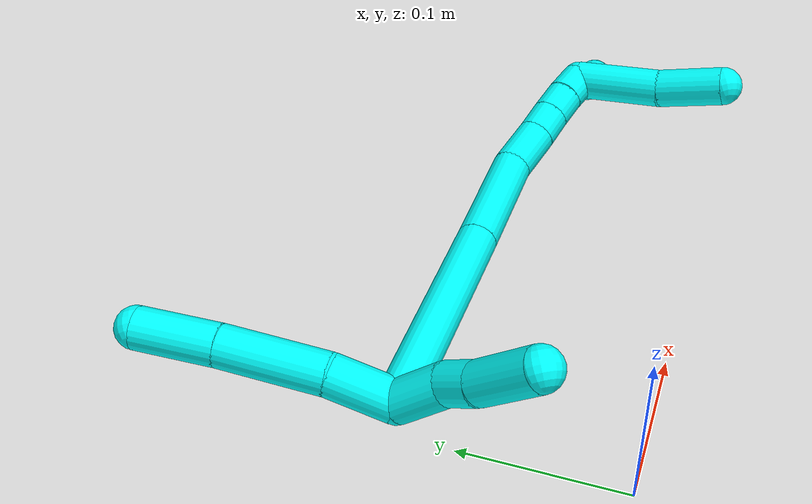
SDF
<sdf version="1.7">
 <world name="default">
  <model name="3">
   <static>0</static>
   <link name="3">
    <collision name="collision-cylinder-e_1_2_8">
     <pose>-0.007498 0.014802 0.010472 -0.955079 -0.392092 0.204823</pose>
     <geometry><cylinder><radius>0.0125</radius><length>0.039242</length></cylinder></geometry>
     <surface>
      <friction><ode><mu>1.16</mu><mu2>1.16</mu2><slip1>0</slip1><slip2>0</slip2></ode></friction>
      <contact><ode><kp>1e+06</kp><kd>1</kd><max_vel>0</max_vel><min_depth>0.001</min_depth></ode></contact>
     </surface>
    </collision>
    <visual name="visual-cylinder-e_1_2_8">
     <pose>-0.007498 0.014802 0.010472 -0.955079 -0.392092 0.204823</pose>
     <geometry><cylinder><radius>0.0125</radius><length>0.039242</length></cylinder></geometry>
     <material><ambient>0.003922 1 0.996078 1</ambient></material>
    </visual>
    <collision name="collision-cylinder-e_2_8_9">
     <pose>-0.024209 0.056151 0.034856 -1.08808 -0.298253 0.181276</pose>
     <geometry><cylinder><radius>0.0125</radius><length>0.06271</length></cylinder></geometry>
     <surface>
      <friction><ode><mu>1.16</mu><mu2>1.16</mu2><slip1>0</slip1><slip2>0</slip2></ode></friction>
      <contact><ode><kp>1e+06</kp><kd>1</kd><max_vel>0</max_vel><min_depth>0.001</min_depth></ode></contact>
     </surface>
    </collision>
    <visual name="visual-cylinder-e_2_8_9">
     <pose>-0.024209 0.056151 0.034856 -1.08808 -0.298253 0.181276</pose>
     <geometry><cylinder><radius>0.0125</radius><length>0.06271</length></cylinder></geometry>
     <material><ambient>0.003922 1 0.996078 1</ambient></material>
    </visual>
    <collision name="collision-cylinder-e_3_9_6">
     <pose>-0.040124 0.103615 0.058498 -1.13542 -0.282682 0.180993</pose>
     <geometry><cylinder><radius>0.0125</radius><length>0.048048</length></cylinder></geometry>
     <surface>
      <friction><ode><mu>1.16</mu><mu2>1.16</mu2><slip1>0</slip1><slip2>0</slip2></ode></friction>
      <contact><ode><kp>1e+06</kp><kd>1</kd><max_vel>0</max_vel><min_depth>0.001</min_depth></ode></contact>
     </surface>
    </collision>
    <visual name="visual-cylinder-e_3_9_6">
     <pose>-0.040124 0.103615 0.058498 -1.13542 -0.282682 0.180993</pose>
     <geometry><cylinder><radius>0.0125</radius><length>0.048048</length></cylinder></geometry>
     <material><ambient>0.003922 1 0.996078 1</ambient></material>
    </visual>
    <collision name="collision-cylinder-e_1_2_10">
     <pose>-0.004149 -0.016687 0.000422 1.54553 -0.243627 -0.237605</pose>
     <geometry><cylinder><radius>0.0125</radius><length>0.0344</length></cylinder></geometry>
     <surface>
      <friction><ode><mu>1.16</mu><mu2>1.16</mu2><slip1>0</slip1><slip2>0</slip2></ode></friction>
      <contact><ode><kp>1e+06</kp><kd>1</kd><max_vel>0</max_vel><min_depth>0.001</min_depth></ode></contact>
     </surface>
    </collision>
    <visual name="visual-cylinder-e_1_2_10">
     <pose>-0.004149 -0.016687 0.000422 1.54553 -0.243627 -0.237605</pose>
     <geometry><cylinder><radius>0.0125</radius><length>0.0344</length></cylinder></geometry>
     <material><ambient>0.003922 1 0.996078 1</ambient></material>
    </visual>
    <collision name="collision-cylinder-e_2_10_11">
     <pose>-0.012745 -0.043383 -0.001999 1.84749 -0.403852 -0.529183</pose>
     <geometry><cylinder><radius>0.0125</radius><length>0.022632</length></cylinder></geometry>
     <surface>
      <friction><ode><mu>1.16</mu><mu2>1.16</mu2><slip1>0</slip1><slip2>0</slip2></ode></friction>
      <contact><ode><kp>1e+06</kp><kd>1</kd><max_vel>0</max_vel><min_depth>0.001</min_depth></ode></contact>
     </surface>
    </collision>
    <visual name="visual-cylinder-e_2_10_11">
     <pose>-0.012745 -0.043383 -0.001999 1.84749 -0.403852 -0.529183</pose>
     <geometry><cylinder><radius>0.0125</radius><length>0.022632</length></cylinder></geometry>
     <material><ambient>0.003922 1 0.996078 1</ambient></material>
    </visual>
    <collision name="collision-cylinder-e_3_11_5">
     <pose>-0.026031 -0.07286 -0.00696 1.67917 -0.424022 -0.470968</pose>
     <geometry><cylinder><radius>0.0125</radius><length>0.042968</length></cylinder></geometry>
     <surface>
      <friction><ode><mu>1.16</mu><mu2>1.16</mu2><slip1>0</slip1><slip2>0</slip2></ode></friction>
      <contact><ode><kp>1e+06</kp><kd>1</kd><max_vel>0</max_vel><min_depth>0.001</min_depth></ode></contact>
     </surface>
    </collision>
    <visual name="visual-cylinder-e_3_11_5">
     <pose>-0.026031 -0.07286 -0.00696 1.67917 -0.424022 -0.470968</pose>
     <geometry><cylinder><radius>0.0125</radius><length>0.042968</length></cylinder></geometry>
     <material><ambient>0.003922 1 0.996078 1</ambient></material>
    </visual>
    <collision name="collision-cylinder-e_1_2_12">
     <pose>0.041645 -0.017547 0.049769 0.338957 0.668096 0.118636</pose>
     <geometry><cylinder><radius>0.0125</radius><length>0.134449</length></cylinder></geometry>
     <surface>
      <friction><ode><mu>1.16</mu><mu2>1.16</mu2><slip1>0</slip1><slip2>0</slip2></ode></friction>
      <contact><ode><kp>1e+06</kp><kd>1</kd><max_vel>0</max_vel><min_depth>0.001</min_depth></ode></contact>
     </surface>
    </collision>
    <visual name="visual-cylinder-e_1_2_12">
     <pose>0.041645 -0.017547 0.049769 0.338957 0.668096 0.118636</pose>
     <geometry><cylinder><radius>0.0125</radius><length>0.134449</length></cylinder></geometry>
     <material><ambient>0.003922 1 0.996078 1</ambient></material>
    </visual>
    <collision name="collision-cylinder-e_2_12_13">
     <pose>0.105369 -0.044791 0.126976 0.339729 0.649023 0.11527</pose>
     <geometry><cylinder><radius>0.0125</radius><length>0.073058</length></cylinder></geometry>
     <surface>
      <friction><ode><mu>1.16</mu><mu2>1.16</mu2><slip1>0</slip1><slip2>0</slip2></ode></friction>
      <contact><ode><kp>1e+06</kp><kd>1</kd><max_vel>0</max_vel><min_depth>0.001</min_depth></ode></contact>
     </surface>
    </collision>
    <visual name="visual-cylinder-e_2_12_13">
     <pose>0.105369 -0.044791 0.126976 0.339729 0.649023 0.11527</pose>
     <geometry><cylinder><radius>0.0125</radius><length>0.073058</length></cylinder></geometry>
     <material><ambient>0.003922 1 0.996078 1</ambient></material>
    </visual>
    <collision name="collision-cylinder-e_3_13_14">
     <pose>0.135776 -0.062757 0.165464 0.642456 0.543008 0.184735</pose>
     <geometry><cylinder><radius>0.0125</radius><length>0.032239</length></cylinder></geometry>
     <surface>
      <friction><ode><mu>1.16</mu><mu2>1.16</mu2><slip1>0</slip1><slip2>0</slip2></ode></friction>
      <contact><ode><kp>1e+06</kp><kd>1</kd><max_vel>0</max_vel><min_depth>0.001</min_depth></ode></contact>
     </surface>
    </collision>
    <visual name="visual-cylinder-e_3_13_14">
     <pose>0.135776 -0.062757 0.165464 0.642456 0.543008 0.184735</pose>
     <geometry><cylinder><radius>0.0125</radius><length>0.032239</length></cylinder></geometry>
     <material><ambient>0.003922 1 0.996078 1</ambient></material>
    </visual>
    <collision name="collision-cylinder-e_4_14_15">
     <pose>0.148968 -0.076178 0.183734 0.619687 0.501519 0.16365</pose>
     <geometry><cylinder><radius>0.0125</radius><length>0.020232</length></cylinder></geometry>
     <surface>
      <friction><ode><mu>1.16</mu><mu2>1.16</mu2><slip1>0</slip1><slip2>0</slip2></ode></friction>
      <contact><ode><kp>1e+06</kp><kd>1</kd><max_vel>0</max_vel><min_depth>0.001</min_depth></ode></contact>
     </surface>
    </collision>
    <visual name="visual-cylinder-e_4_14_15">
     <pose>0.148968 -0.076178 0.183734 0.619687 0.501519 0.16365</pose>
     <geometry><cylinder><radius>0.0125</radius><length>0.020232</length></cylinder></geometry>
     <material><ambient>0.003922 1 0.996078 1</ambient></material>
    </visual>
    <collision name="collision-cylinder-e_5_15_16">
     <pose>0.158611 -0.086716 0.197899 0.659754 0.4981 0.173721</pose>
     <geometry><cylinder><radius>0.0125</radius><length>0.020008</length></cylinder></geometry>
     <surface>
      <friction><ode><mu>1.16</mu><mu2>1.16</mu2><slip1>0</slip1><slip2>0</slip2></ode></friction>
      <contact><ode><kp>1e+06</kp><kd>1</kd><max_vel>0</max_vel><min_depth>0.001</min_depth></ode></contact>
     </surface>
    </collision>
    <visual name="visual-cylinder-e_5_15_16">
     <pose>0.158611 -0.086716 0.197899 0.659754 0.4981 0.173721</pose>
     <geometry><cylinder><radius>0.0125</radius><length>0.020008</length></cylinder></geometry>
     <material><ambient>0.003922 1 0.996078 1</ambient></material>
    </visual>
    <collision name="collision-cylinder-e_6_16_1">
     <pose>0.168656 -0.097616 0.211326 0.704755 0.554025 0.208348</pose>
     <geometry><cylinder><radius>0.0125</radius><length>0.020014</length></cylinder></geometry>
     <surface>
      <friction><ode><mu>1.16</mu><mu2>1.16</mu2><slip1>0</slip1><slip2>0</slip2></ode></friction>
      <contact><ode><kp>1e+06</kp><kd>1</kd><max_vel>0</max_vel><min_depth>0.001</min_depth></ode></contact>
     </surface>
    </collision>
    <visual name="visual-cylinder-e_6_16_1">
     <pose>0.168656 -0.097616 0.211326 0.704755 0.554025 0.208348</pose>
     <geometry><cylinder><radius>0.0125</radius><length>0.020014</length></cylinder></geometry>
     <material><ambient>0.003922 1 0.996078 1</ambient></material>
    </visual>
    <collision name="collision-cylinder-e_1_1_17">
     <pose>0.198583 -0.100728 0.226278 -0.276293 1.22794 -0.195369</pose>
     <geometry><cylinder><radius>0.0125</radius><length>0.052373</length></cylinder></geometry>
     <surface>
      <friction><ode><mu>1.16</mu><mu2>1.16</mu2><slip1>0</slip1><slip2>0</slip2></ode></friction>
      <contact><ode><kp>1e+06</kp><kd>1</kd><max_vel>0</max_vel><min_depth>0.001</min_depth></ode></contact>
     </surface>
    </collision>
    <visual name="visual-cylinder-e_1_1_17">
     <pose>0.198583 -0.100728 0.226278 -0.276293 1.22794 -0.195369</pose>
     <geometry><cylinder><radius>0.0125</radius><length>0.052373</length></cylinder></geometry>
     <material><ambient>0.003922 1 0.996078 1</ambient></material>
    </visual>
    <collision name="collision-cylinder-e_2_17_18">
     <pose>0.233985 -0.097476 0.239627 -0.172701 1.13869 -0.110699</pose>
     <geometry><cylinder><radius>0.0125</radius><length>0.023653</length></cylinder></geometry>
     <surface>
      <friction><ode><mu>1.16</mu><mu2>1.16</mu2><slip1>0</slip1><slip2>0</slip2></ode></friction>
      <contact><ode><kp>1e+06</kp><kd>1</kd><max_vel>0</max_vel><min_depth>0.001</min_depth></ode></contact>
     </surface>
    </collision>
    <visual name="visual-cylinder-e_2_17_18">
     <pose>0.233985 -0.097476 0.239627 -0.172701 1.13869 -0.110699</pose>
     <geometry><cylinder><radius>0.0125</radius><length>0.023653</length></cylinder></geometry>
     <material><ambient>0.003922 1 0.996078 1</ambient></material>
    </visual>
    <collision name="collision-cylinder-e_3_18_4">
     <pose>0.255078 -0.097067 0.250531 0.073321 1.0426 0.04212</pose>
     <geometry><cylinder><radius>0.0125</radius><length>0.023973</length></cylinder></geometry>
     <surface>
      <friction><ode><mu>1.16</mu><mu2>1.16</mu2><slip1>0</slip1><slip2>0</slip2></ode></friction>
      <contact><ode><kp>1e+06</kp><kd>1</kd><max_vel>0</max_vel><min_depth>0.001</min_depth></ode></contact>
     </surface>
    </collision>
    <visual name="visual-cylinder-e_3_18_4">
     <pose>0.255078 -0.097067 0.250531 0.073321 1.0426 0.04212</pose>
     <geometry><cylinder><radius>0.0125</radius><length>0.023973</length></cylinder></geometry>
     <material><ambient>0.003922 1 0.996078 1</ambient></material>
    </visual>
    <collision name="collision-cylinder-e_1_1_19">
     <pose>0.175533 -0.128826 0.205735 2.01005 0.056727 0.089297</pose>
     <geometry><cylinder><radius>0.0125</radius><length>0.056875</length></cylinder></geometry>
     <surface>
      <friction><ode><mu>1.16</mu><mu2>1.16</mu2><slip1>0</slip1><slip2>0</slip2></ode></friction>
      <contact><ode><kp>1e+06</kp><kd>1</kd><max_vel>0</max_vel><min_depth>0.001</min_depth></ode></contact>
     </surface>
    </collision>
    <visual name="visual-cylinder-e_1_1_19">
     <pose>0.175533 -0.128826 0.205735 2.01005 0.056727 0.089297</pose>
     <geometry><cylinder><radius>0.0125</radius><length>0.056875</length></cylinder></geometry>
     <material><ambient>0.003922 1 0.996078 1</ambient></material>
    </visual>
    <collision name="collision-cylinder-e_2_19_3">
     <pose>0.176724 -0.175026 0.186999 1.88494 -0.019525 -0.026873</pose>
     <geometry><cylinder><radius>0.0125</radius><length>0.043125</length></cylinder></geometry>
     <surface>
      <friction><ode><mu>1.16</mu><mu2>1.16</mu2><slip1>0</slip1><slip2>0</slip2></ode></friction>
      <contact><ode><kp>1e+06</kp><kd>1</kd><max_vel>0</max_vel><min_depth>0.001</min_depth></ode></contact>
     </surface>
    </collision>
    <visual name="visual-cylinder-e_2_19_3">
     <pose>0.176724 -0.175026 0.186999 1.88494 -0.019525 -0.026873</pose>
     <geometry><cylinder><radius>0.0125</radius><length>0.043125</length></cylinder></geometry>
     <material><ambient>0.003922 1 0.996078 1</ambient></material>
    </visual>
    <collision name="collision-sphere-3">
     <pose>0.176303 -0.195529 0.180337 0 -0 0</pose>
     <geometry><sphere><radius>0.0125</radius></sphere></geometry>
     <surface>
      <friction><ode><mu>1.16</mu><mu2>1.16</mu2><slip1>0</slip1><slip2>0</slip2></ode></friction>
      <contact><ode><kp>1e+06</kp><kd>1</kd><max_vel>0</max_vel><min_depth>0.001</min_depth></ode></contact>
     </surface>
    </collision>
    <visual name="visual-sphere-3">
     <pose>0.176303 -0.195529 0.180337 0 -0 0</pose>
     <geometry><sphere><radius>0.0125</radius></sphere></geometry>
     <material><ambient>0.003922 1 0.996078 1</ambient></material>
    </visual>
    <collision name="collision-sphere-19">
     <pose>0.177145 -0.154523 0.19366 0 -0 0</pose>
     <geometry><sphere><radius>0.0125</radius></sphere></geometry>
     <surface>
      <friction><ode><mu>1.16</mu><mu2>1.16</mu2><slip1>0</slip1><slip2>0</slip2></ode></friction>
      <contact><ode><kp>1e+06</kp><kd>1</kd><max_vel>0</max_vel><min_depth>0.001</min_depth></ode></contact>
     </surface>
    </collision>
    <visual name="visual-sphere-19">
     <pose>0.177145 -0.154523 0.19366 0 -0 0</pose>
     <geometry><sphere><radius>0.0125</radius></sphere></geometry>
     <material><ambient>0.003922 1 0.996078 1</ambient></material>
    </visual>
    <collision name="collision-sphere-11">
     <pose>-0.017192 -0.053393 -0.004842 0 -0 0</pose>
     <geometry><sphere><radius>0.0125</radius></sphere></geometry>
     <surface>
      <friction><ode><mu>1.16</mu><mu2>1.16</mu2><slip1>0</slip1><slip2>0</slip2></ode></friction>
      <contact><ode><kp>1e+06</kp><kd>1</kd><max_vel>0</max_vel><min_depth>0.001</min_depth></ode></contact>
     </surface>
    </collision>
    <visual name="visual-sphere-11">
     <pose>-0.017192 -0.053393 -0.004842 0 -0 0</pose>
     <geometry><sphere><radius>0.0125</radius></sphere></geometry>
     <material><ambient>0.003922 1 0.996078 1</ambient></material>
    </visual>
    <collision name="collision-sphere-10">
     <pose>-0.008298 -0.033374 0.000843 0 -0 0</pose>
     <geometry><sphere><radius>0.0125</radius></sphere></geometry>
     <surface>
      <friction><ode><mu>1.16</mu><mu2>1.16</mu2><slip1>0</slip1><slip2>0</slip2></ode></friction>
      <contact><ode><kp>1e+06</kp><kd>1</kd><max_vel>0</max_vel><min_depth>0.001</min_depth></ode></contact>
     </surface>
    </collision>
    <visual name="visual-sphere-10">
     <pose>-0.008298 -0.033374 0.000843 0 -0 0</pose>
     <geometry><sphere><radius>0.0125</radius></sphere></geometry>
     <material><ambient>0.003922 1 0.996078 1</ambient></material>
    </visual>
    <collision name="collision-sphere-6">
     <pose>-0.046825 0.124534 0.068228 0 -0 0</pose>
     <geometry><sphere><radius>0.0125</radius></sphere></geometry>
     <surface>
      <friction><ode><mu>1.16</mu><mu2>1.16</mu2><slip1>0</slip1><slip2>0</slip2></ode></friction>
      <contact><ode><kp>1e+06</kp><kd>1</kd><max_vel>0</max_vel><min_depth>0.001</min_depth></ode></contact>
     </surface>
    </collision>
    <visual name="visual-sphere-6">
     <pose>-0.046825 0.124534 0.068228 0 -0 0</pose>
     <geometry><sphere><radius>0.0125</radius></sphere></geometry>
     <material><ambient>0.003922 1 0.996078 1</ambient></material>
    </visual>
    <collision name="collision-sphere-9">
     <pose>-0.033423 0.082697 0.048768 0 -0 0</pose>
     <geometry><sphere><radius>0.0125</radius></sphere></geometry>
     <surface>
      <friction><ode><mu>1.16</mu><mu2>1.16</mu2><slip1>0</slip1><slip2>0</slip2></ode></friction>
      <contact><ode><kp>1e+06</kp><kd>1</kd><max_vel>0</max_vel><min_depth>0.001</min_depth></ode></contact>
     </surface>
    </collision>
    <visual name="visual-sphere-9">
     <pose>-0.033423 0.082697 0.048768 0 -0 0</pose>
     <geometry><sphere><radius>0.0125</radius></sphere></geometry>
     <material><ambient>0.003922 1 0.996078 1</ambient></material>
    </visual>
    <collision name="collision-sphere-2">
     <geometry><sphere><radius>0.0125</radius></sphere></geometry>
     <surface>
      <friction><ode><mu>1.16</mu><mu2>1.16</mu2><slip1>0</slip1><slip2>0</slip2></ode></friction>
      <contact><ode><kp>1e+06</kp><kd>1</kd><max_vel>0</max_vel><min_depth>0.001</min_depth></ode></contact>
     </surface>
    </collision>
    <visual name="visual-sphere-2">
     <geometry><sphere><radius>0.0125</radius></sphere></geometry>
     <material><ambient>0.003922 1 0.996078 1</ambient></material>
    </visual>
    <collision name="collision-sphere-8">
     <pose>-0.014995 0.029604 0.020944 0 -0 0</pose>
     <geometry><sphere><radius>0.0125</radius></sphere></geometry>
     <surface>
      <friction><ode><mu>1.16</mu><mu2>1.16</mu2><slip1>0</slip1><slip2>0</slip2></ode></friction>
      <contact><ode><kp>1e+06</kp><kd>1</kd><max_vel>0</max_vel><min_depth>0.001</min_depth></ode></contact>
     </surface>
    </collision>
    <visual name="visual-sphere-8">
     <pose>-0.014995 0.029604 0.020944 0 -0 0</pose>
     <geometry><sphere><radius>0.0125</radius></sphere></geometry>
     <material><ambient>0.003922 1 0.996078 1</ambient></material>
    </visual>
    <collision name="collision-sphere-5">
     <pose>-0.03487 -0.092326 -0.009078 0 -0 0</pose>
     <geometry><sphere><radius>0.0125</radius></sphere></geometry>
     <surface>
      <friction><ode><mu>1.16</mu><mu2>1.16</mu2><slip1>0</slip1><slip2>0</slip2></ode></friction>
      <contact><ode><kp>1e+06</kp><kd>1</kd><max_vel>0</max_vel><min_depth>0.001</min_depth></ode></contact>
     </surface>
    </collision>
    <visual name="visual-sphere-5">
     <pose>-0.03487 -0.092326 -0.009078 0 -0 0</pose>
     <geometry><sphere><radius>0.0125</radius></sphere></geometry>
     <material><ambient>0.003922 1 0.996078 1</ambient></material>
    </visual>
    <collision name="collision-sphere-12">
     <pose>0.08329 -0.035093 0.099538 0 -0 0</pose>
     <geometry><sphere><radius>0.0125</radius></sphere></geometry>
     <surface>
      <friction><ode><mu>1.16</mu><mu2>1.16</mu2><slip1>0</slip1><slip2>0</slip2></ode></friction>
      <contact><ode><kp>1e+06</kp><kd>1</kd><max_vel>0</max_vel><min_depth>0.001</min_depth></ode></contact>
     </surface>
    </collision>
    <visual name="visual-sphere-12">
     <pose>0.08329 -0.035093 0.099538 0 -0 0</pose>
     <geometry><sphere><radius>0.0125</radius></sphere></geometry>
     <material><ambient>0.003922 1 0.996078 1</ambient></material>
    </visual>
    <collision name="collision-sphere-13">
     <pose>0.127447 -0.054489 0.154414 0 -0 0</pose>
     <geometry><sphere><radius>0.0125</radius></sphere></geometry>
     <surface>
      <friction><ode><mu>1.16</mu><mu2>1.16</mu2><slip1>0</slip1><slip2>0</slip2></ode></friction>
      <contact><ode><kp>1e+06</kp><kd>1</kd><max_vel>0</max_vel><min_depth>0.001</min_depth></ode></contact>
     </surface>
    </collision>
    <visual name="visual-sphere-13">
     <pose>0.127447 -0.054489 0.154414 0 -0 0</pose>
     <geometry><sphere><radius>0.0125</radius></sphere></geometry>
     <material><ambient>0.003922 1 0.996078 1</ambient></material>
    </visual>
    <collision name="collision-sphere-14">
     <pose>0.144105 -0.071026 0.176513 0 -0 0</pose>
     <geometry><sphere><radius>0.0125</radius></sphere></geometry>
     <surface>
      <friction><ode><mu>1.16</mu><mu2>1.16</mu2><slip1>0</slip1><slip2>0</slip2></ode></friction>
      <contact><ode><kp>1e+06</kp><kd>1</kd><max_vel>0</max_vel><min_depth>0.001</min_depth></ode></contact>
     </surface>
    </collision>
    <visual name="visual-sphere-14">
     <pose>0.144105 -0.071026 0.176513 0 -0 0</pose>
     <geometry><sphere><radius>0.0125</radius></sphere></geometry>
     <material><ambient>0.003922 1 0.996078 1</ambient></material>
    </visual>
    <collision name="collision-sphere-15">
     <pose>0.153832 -0.08133 0.190955 0 -0 0</pose>
     <geometry><sphere><radius>0.0125</radius></sphere></geometry>
     <surface>
      <friction><ode><mu>1.16</mu><mu2>1.16</mu2><slip1>0</slip1><slip2>0</slip2></ode></friction>
      <contact><ode><kp>1e+06</kp><kd>1</kd><max_vel>0</max_vel><min_depth>0.001</min_depth></ode></contact>
     </surface>
    </collision>
    <visual name="visual-sphere-15">
     <pose>0.153832 -0.08133 0.190955 0 -0 0</pose>
     <geometry><sphere><radius>0.0125</radius></sphere></geometry>
     <material><ambient>0.003922 1 0.996078 1</ambient></material>
    </visual>
    <collision name="collision-sphere-16">
     <pose>0.163391 -0.092103 0.204843 0 -0 0</pose>
     <geometry><sphere><radius>0.0125</radius></sphere></geometry>
     <surface>
      <friction><ode><mu>1.16</mu><mu2>1.16</mu2><slip1>0</slip1><slip2>0</slip2></ode></friction>
      <contact><ode><kp>1e+06</kp><kd>1</kd><max_vel>0</max_vel><min_depth>0.001</min_depth></ode></contact>
     </surface>
    </collision>
    <visual name="visual-sphere-16">
     <pose>0.163391 -0.092103 0.204843 0 -0 0</pose>
     <geometry><sphere><radius>0.0125</radius></sphere></geometry>
     <material><ambient>0.003922 1 0.996078 1</ambient></material>
    </visual>
    <collision name="collision-sphere-1">
     <pose>0.173921 -0.10313 0.217809 0 -0 0</pose>
     <geometry><sphere><radius>0.0125</radius></sphere></geometry>
     <surface>
      <friction><ode><mu>1.16</mu><mu2>1.16</mu2><slip1>0</slip1><slip2>0</slip2></ode></friction>
      <contact><ode><kp>1e+06</kp><kd>1</kd><max_vel>0</max_vel><min_depth>0.001</min_depth></ode></contact>
     </surface>
    </collision>
    <visual name="visual-sphere-1">
     <pose>0.173921 -0.10313 0.217809 0 -0 0</pose>
     <geometry><sphere><radius>0.0125</radius></sphere></geometry>
     <material><ambient>0.003922 1 0.996078 1</ambient></material>
    </visual>
    <collision name="collision-sphere-18">
     <pose>0.244725 -0.096624 0.244506 0 -0 0</pose>
     <geometry><sphere><radius>0.0125</radius></sphere></geometry>
     <surface>
      <friction><ode><mu>1.16</mu><mu2>1.16</mu2><slip1>0</slip1><slip2>0</slip2></ode></friction>
      <contact><ode><kp>1e+06</kp><kd>1</kd><max_vel>0</max_vel><min_depth>0.001</min_depth></ode></contact>
     </surface>
    </collision>
    <visual name="visual-sphere-18">
     <pose>0.244725 -0.096624 0.244506 0 -0 0</pose>
     <geometry><sphere><radius>0.0125</radius></sphere></geometry>
     <material><ambient>0.003922 1 0.996078 1</ambient></material>
    </visual>
    <collision name="collision-sphere-17">
     <pose>0.223246 -0.098327 0.234748 0 -0 0</pose>
     <geometry><sphere><radius>0.0125</radius></sphere></geometry>
     <surface>
      <friction><ode><mu>1.16</mu><mu2>1.16</mu2><slip1>0</slip1><slip2>0</slip2></ode></friction>
      <contact><ode><kp>1e+06</kp><kd>1</kd><max_vel>0</max_vel><min_depth>0.001</min_depth></ode></contact>
     </surface>
    </collision>
    <visual name="visual-sphere-17">
     <pose>0.223246 -0.098327 0.234748 0 -0 0</pose>
     <geometry><sphere><radius>0.0125</radius></sphere></geometry>
     <material><ambient>0.003922 1 0.996078 1</ambient></material>
    </visual>
    <collision name="collision-sphere-4">
     <pose>0.265431 -0.09751 0.256555 0 -0 0</pose>
     <geometry><sphere><radius>0.0125</radius></sphere></geometry>
     <surface>
      <friction><ode><mu>1.16</mu><mu2>1.16</mu2><slip1>0</slip1><slip2>0</slip2></ode></friction>
      <contact><ode><kp>1e+06</kp><kd>1</kd><max_vel>0</max_vel><min_depth>0.001</min_depth></ode></contact>
     </surface>
    </collision>
    <visual name="visual-sphere-4">
     <pose>0.265431 -0.09751 0.256555 0 -0 0</pose>
     <geometry><sphere><radius>0.0125</radius></sphere></geometry>
     <material><ambient>0.003922 1 0.996078 1</ambient></material>
    </visual>
    <inertial>
     <pose>0.082136 -0.044365 0.108769 0 -0 0</pose>
     <mass>0.75</mass>
     <inertia>
      <ixx>0.000321</ixx>
      <ixy>0</ixy>
      <ixz>0</ixz>
      <iyy>0.000284</iyy>
      <iyz>0</iyz>
      <izz>-6.3e-05</izz>
     </inertia>
    </inertial>
   </link>
   <pose>-0.004543 0.130349 0.034979 -0.678826 0.839932 -0.294222</pose>
  </model>
 </world>
</sdf>
